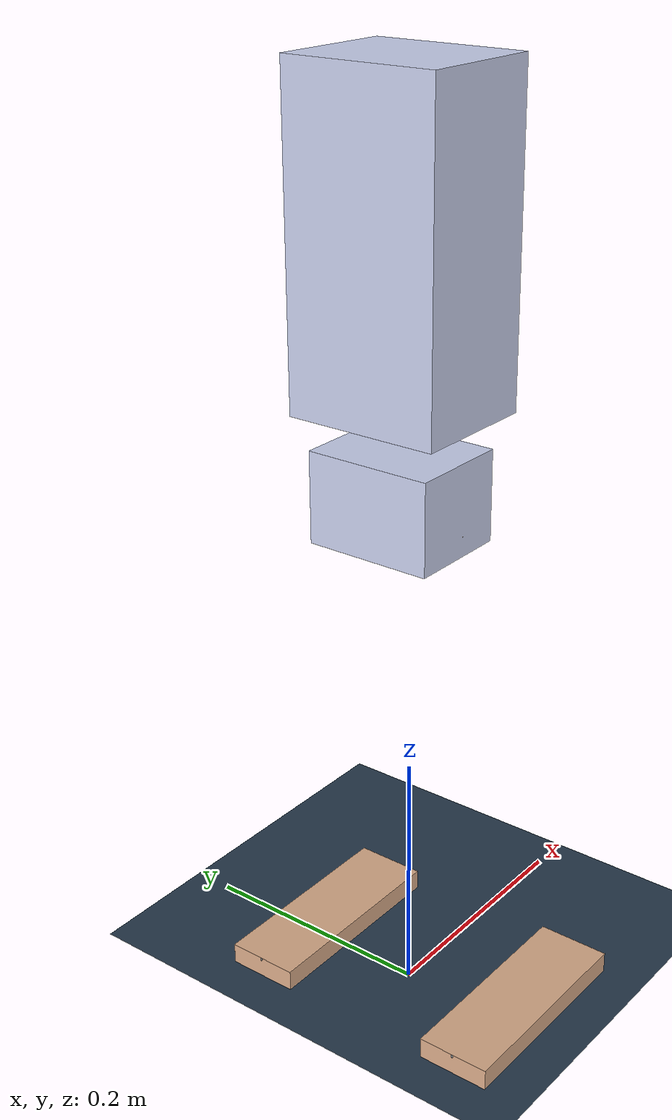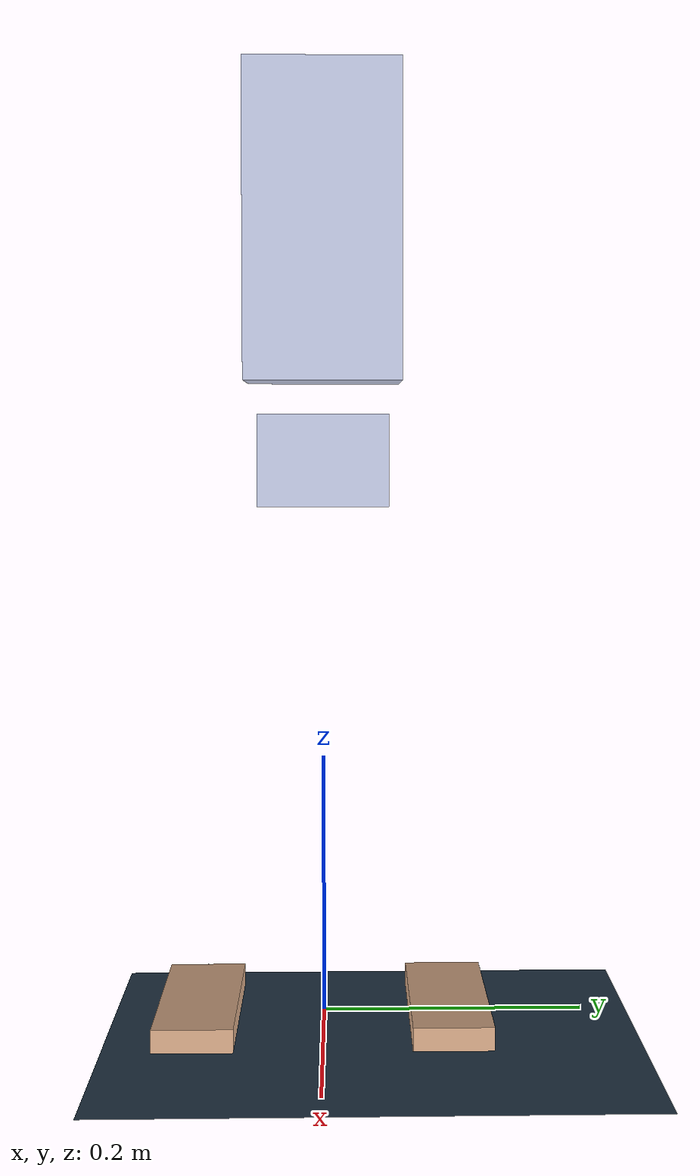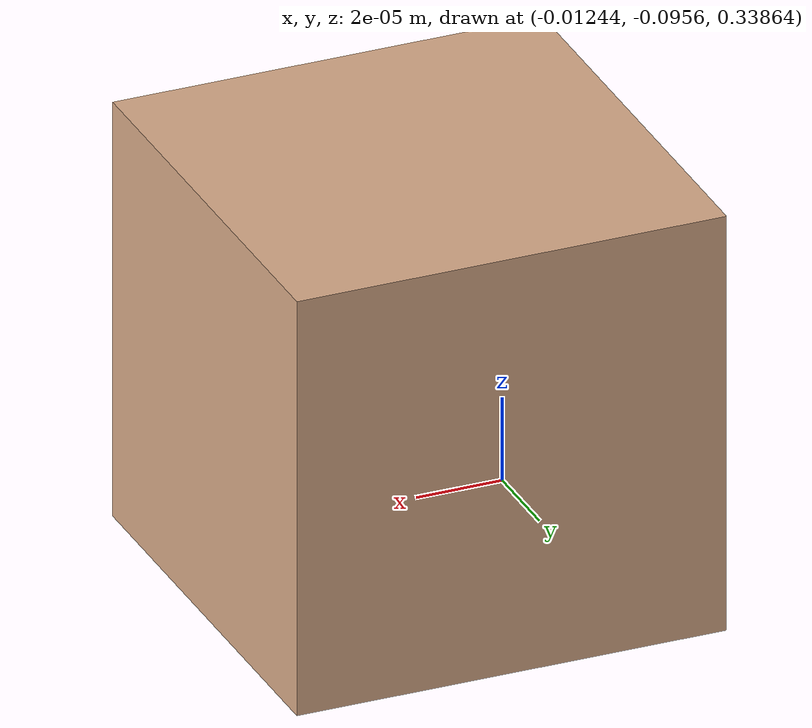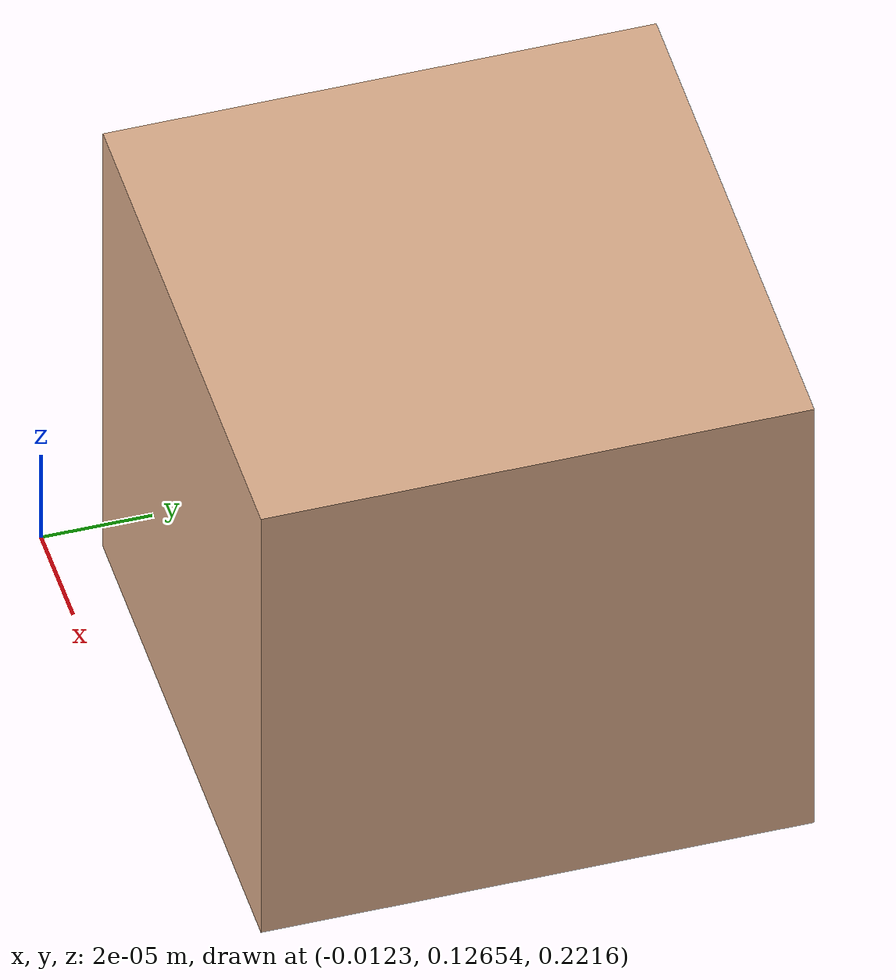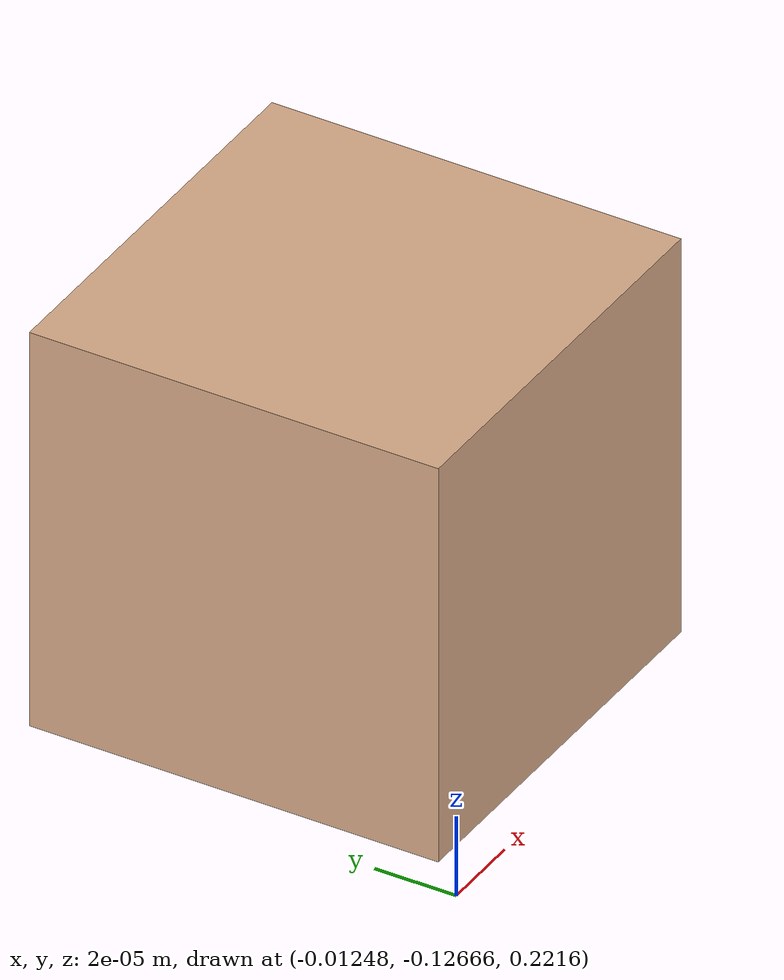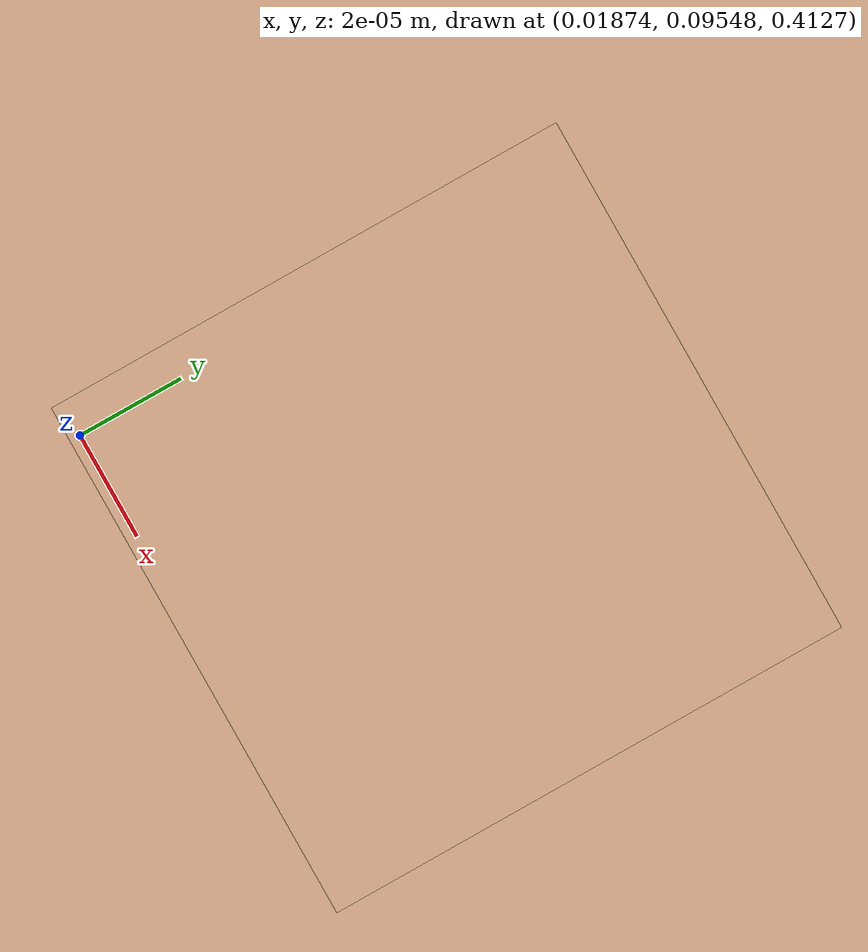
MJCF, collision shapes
<mujoco model="dm">
  <compiler angle="radian" eulerseq="zyx"/>
  <option timestep='0.001' iterations='50' solver='PGS' gravity='0 0 -9.81'>
	    <flag sensornoise="enable" frictionloss="enable"/>
	    </option>
	    <size njmax="500" nconmax="100" />

	    <visual>
		<quality shadowsize='4096'/>
		<map znear='0.05'/>
	    </visual>
	  <default>
      <joint limited='true'/>
      <motor ctrllimited='true'/>
      <geom  condim='4' contype="1" conaffinity="15" solref='0.001 2' friction='0.9 0.2 0.2'/>
      <equality solref='0.001 2'/>
      <default class='leg_joint_param'>
          <joint  damping="0.01" frictionloss="0.01" armature="0.01"/>
      </default>
	  </default>
  <asset>
    <mesh name="base_link" file="base_link.STL"/>
    <mesh name="loin_yaw_Link" file="loin_yaw_Link.STL"/>
    <mesh name="leg_l1_link" file="leg_l1_link.STL"/>
    <mesh name="leg_l2_link" file="leg_l2_link.STL"/>
    <mesh name="leg_l3_link" file="leg_l3_link.STL"/>
    <mesh name="leg_l4_link" file="leg_l4_link.STL"/>
    <mesh name="leg_l5_link" file="leg_l5_link.STL"/>
    <mesh name="leg_r1_link" file="leg_r1_link.STL"/>
    <mesh name="leg_r2_link" file="leg_r2_link.STL"/>
    <mesh name="leg_r3_link" file="leg_r3_link.STL"/>
    <mesh name="leg_r4_link" file="leg_r4_link.STL"/>
    <mesh name="leg_r5_link" file="leg_r5_link.STL"/>
    <material name="matplane" reflectance="0.3" texture="texplane" texrepeat="1 1" texuniform="true"/>
    <material name="matgeom" texture="texgeom" texuniform="true" rgba="0.8 0.6 .4 1"/>
    <texture name="texplane" type="2d" builtin="checker" rgb1=".2 .3 .4" rgb2=".1 0.15 0.2" width="512" height="512" mark="cross" markrgb=".8 .8 .8"/>
    <texture name="texgeom" type="cube" builtin="flat" mark="cross" width="127" height="1278" rgb1="0.8 0.6 0.4" rgb2="0.8 0.6 0.4" markrgb="1 1 1" random="0.01"/>
    <texture type="skybox" builtin="gradient" rgb1="1 1 1" rgb2=".6 .8 1" width="256" height="256"/>
  </asset>

  <worldbody>
    <light directional="true" diffuse=".4 .4 .4" specular="0.1 0.1 0.1" pos="0 0 5.0" dir="0 0 -1" castshadow="false"/>
    <light directional="true" diffuse=".6 .6 .6" specular="0.2 0.2 0.2" pos="0 0 4" dir="0 0 -1"/>
    <geom name="ground" type="plane" size="0 0 1" pos="0.001 0 0" quat="1 0 0 0" material="matplane" condim="1" conaffinity='15'/>
    <body name="base_link" pos="0 0 0.72" >
      <inertial pos="-0.0126752 -0.000507991 -0.169835" quat="0.999989 -0.00132624 0.00371712 -0.0023342" mass="4.89899" diaginertia="0.058573 0.0524694 0.016614"/>

      <joint name="floating_base_joint" type="free" limited="false" />
      <site name='imu' size='0.01' pos='0.0 0 0.0' quat='1 0 0 0'/>

      <geom type="mesh" contype="0" conaffinity="0" group="1" density="0" rgba="0.792157 0.819608 0.933333 1" mesh="base_link"/>
      <geom size="0.05 0.06 0.12" pos="-0.01 0 -0.11" type="box" rgba="0.792157 0.819608 0.933333 1"/>
      <geom pos="-0.012333 0 -0.24525" quat="1 0 0 0" type="mesh" contype="0" conaffinity="0" group="1" density="0" rgba="0.792157 0.819608 0.933333 1" mesh="loin_yaw_Link"/>
      <geom size="0.04 0.05 0.035" pos="-0.012333 0 -0.29025" type="box" rgba="0.792157 0.819608 0.933333 1"/>
      <body name="leg_l1_link" pos="-0.0122956 0.05355 -0.30725">
        <inertial pos="0.003165 0.041652 -6.4e-05" quat="0.401896 0.116854 -0.729348 0.541181" mass="0.492347" diaginertia="0.000304912 0.000303129 0.000298959"/>
        <joint name="left_leg_pitch_joint" pos="0 0 0" axis="0 1 0" limited="true" range="-1.05 1.05"/>
        <geom type="mesh" contype="0" conaffinity="0" group="1" density="0" rgba="0.854902 0.67451 0.541176 1" mesh="leg_l1_link"/>
        <geom size="5e-05 5e-05 5e-05" type="box" rgba="0.854902 0.67451 0.541176 1"/>
        <body name="leg_l2_link" pos="0.031079 0.041978 0">
          <inertial pos="-0.031797 2.2e-05 -0.037074" quat="0.476303 0.522624 0.522624 0.476303" mass="0.11551" diaginertia="0.000192 0.000149279 0.000116721"/>
          <joint name="left_leg_roll_joint" pos="0 0 0" axis="1 0 0" limited="true" range="-0.52 0.785" />
          <geom type="mesh" contype="0" conaffinity="0" group="1" density="0" rgba="0.854902 0.67451 0.541176 1" mesh="leg_l2_link"/>
          <geom size="5e-05 5e-05 5e-05" type="box" rgba="0.854902 0.67451 0.541176 1"/>
          <body name="leg_l3_link" pos="-0.03105 2.1677e-05 -0.07405">
            <inertial pos="-9.4e-05 0.001497 -0.07069" quat="0.998967 0.0187001 -0.00350487 0.0412607" mass="0.921105" diaginertia="0.00238417 0.00236745 0.000560383"/>
            <joint name="left_leg_yaw_joint" pos="0 0 0" axis="0 0 1" limited="true" range="-0.52 0.785" />
            <geom type="mesh" contype="0" conaffinity="0" group="1" density="0" rgba="0.854902 0.67451 0.541176 1" mesh="leg_l3_link"/>
            <geom size="5e-05 5e-05 5e-05" type="box" rgba="0.854902 0.67451 0.541176 1"/>
            <body name="left_knee_link" pos="2.1677e-05 0.03105 -0.11705">
              <inertial pos="-0.003284 -0.032312 -0.084258" quat="0.997729 0.00884962 0.0569133 0.0349301" mass="0.519684" diaginertia="0.00107093 0.00098367 0.000417397"/>
              <joint name="left_knee_joint" pos="0 0 0" axis="0 1 0" limited="true" range="-0.3 2.3562" />
              <geom type="mesh" contype="0" conaffinity="0" group="1" density="0" rgba="0.854902 0.67451 0.541176 1" mesh="leg_l4_link"/>
              <geom size="5e-05 5e-05 5e-05" type="box" rgba="0.854902 0.67451 0.541176 1"/>
              <body name="left_ankle_link" pos="-3.1151e-05 -0.02305 -0.2">
                <inertial pos="0.0151736 -0.00800896 -0.0127333" quat="-2.14443e-05 0.725077 -1.9333e-05 0.688668" mass="0.192725" diaginertia="0.000557303 0.000532007 6.3704e-05"/>
                <joint name="left_ankle_joint" pos="0 0 0" axis="0 1 0" limited="true" range="-1.047 0.3" />
                <geom type="mesh" contype="0" conaffinity="0" group="1" density="0" rgba="0.854902 0.67451 0.541176 1" mesh="leg_l5_link"/>
                <geom size="0.0875 0.03 0.01" pos="0.027 -0.008 -0.015" type="box" rgba="0.854902 0.67451 0.541176 1"/>
                <geom size="0.001" pos="0.113 -0.008 -0.006" contype="0" conaffinity="0" group="1" density="0"/>
                <geom size="0.001" pos="0.113 -0.008 -0.006"/>
                <geom size="0.001" pos="-0.061 -0.008 -0.006" contype="0" conaffinity="0" group="1" density="0"/>
                <geom size="0.001" pos="-0.061 -0.008 -0.006"/>
              </body>
            </body>
          </body>
        </body>
      </body>
      <body name="leg_r1_link" pos="-0.0123704 -0.05355 -0.30725">
        <inertial pos="0.003106 -0.041675 -7.2e-05" quat="0.116854 0.401896 -0.541181 0.729348" mass="0.4921" diaginertia="0.000304912 0.000303129 0.000298959"/>
        <joint name="right_leg_pitch_joint" pos="0 0 0" axis="0 1 0" limited="true" range="-1.05 1.05" />
        <geom type="mesh" contype="0" conaffinity="0" group="1" density="0" rgba="0.854902 0.67451 0.541176 1" mesh="leg_r1_link"/>
        <geom size="5e-05 5e-05 5e-05" type="box" rgba="0.854902 0.67451 0.541176 1"/>
        <body name="leg_r2_link" pos="0.031021 -0.042022 0">
          <inertial pos="-0.031797 2.2e-05 -0.037074" quat="0.476303 0.522624 0.522624 0.476303" mass="0.11551" diaginertia="0.000192 0.000149279 0.000116721"/>
          <joint name="right_leg_roll_joint" pos="0 0 0" axis="1 0 0" limited="true" range="-0.785 0.52" />
          <geom type="mesh" contype="0" conaffinity="0" group="1" density="0" rgba="0.854902 0.67451 0.541176 1" mesh="leg_r2_link"/>
          <geom size="5e-05 5e-05 5e-05" type="box" rgba="0.854902 0.67451 0.541176 1"/>
          <body name="leg_r3_link" pos="-0.03105 2.1677e-05 -0.07405">
            <inertial pos="0.000186 -0.001497 -0.070691" quat="0.999546 -0.0188654 0.00121243 -0.0234514" mass="0.921105" diaginertia="0.00238406 0.00236753 0.000560418"/>
            <joint name="right_leg_yaw_joint" pos="0 0 0" axis="0 0 1" limited="true" range="-0.785 0.52" />
            <geom type="mesh" contype="0" conaffinity="0" group="1" density="0" rgba="0.854902 0.67451 0.541176 1" mesh="leg_r3_link"/>
            <geom size="5e-05 5e-05 5e-05" type="box" rgba="0.854902 0.67451 0.541176 1"/>
            <body name="right_knee_link" pos="-2.1677e-05 -0.03105 -0.11705">
              <inertial pos="-0.00318 0.032366 -0.084259" quat="0.997516 -0.00927026 0.05687 -0.0405283" mass="0.519684" diaginertia="0.00107108 0.000983522 0.000417394"/>
              <joint name="right_knee_joint" pos="0 0 0" axis="0 1 0" limited="true" range="-0.3 2.3562" />
              <geom type="mesh" contype="0" conaffinity="0" group="1" density="0" rgba="0.854902 0.67451 0.541176 1" mesh="leg_r4_link"/>
              <geom size="5e-05 5e-05 5e-05" type="box" rgba="0.854902 0.67451 0.541176 1"/>
              <body name="right_ankle_link" pos="1.6127e-05 0.0231 -0.2">
                <inertial pos="0.0151853 0.00799104 -0.0127324" quat="-2.14381e-05 0.725078 -1.93302e-05 0.688666" mass="0.192725" diaginertia="0.000557298 0.000532002 6.37035e-05"/>
                <joint name="right_ankle_joint" pos="0 0 0" axis="0 1 0" limited="true" range="-1.047 0.3" />
                <geom type="mesh" contype="0" conaffinity="0" group="1" density="0" rgba="0.854902 0.67451 0.541176 1" mesh="leg_r5_link"/>
                <geom size="0.0875 0.03 0.01" pos="0.027 0.008 -0.015" type="box" rgba="0.854902 0.67451 0.541176 1"/>
                <geom size="0.001" pos="0.113 0.008 -0.006" contype="0" conaffinity="0" group="1" density="0"/>
                <geom size="0.001" pos="0.113 0.008 -0.006"/>
                <geom size="0.001" pos="-0.061 0.008 -0.006" contype="0" conaffinity="0" group="1" density="0"/>
                <geom size="0.001" pos="-0.061 0.008 -0.006"/>
              </body>
            </body>
          </body>
        </body>
      </body>
    </body>
  </worldbody>

  <actuator>
    <motor name="left_leg_pitch_joint" joint="left_leg_pitch_joint" gear="1" ctrllimited="true" ctrlrange="-178 178"/>
    <motor name="left_leg_roll_joint" joint="left_leg_roll_joint" gear="1" ctrllimited="true" ctrlrange="-178 178"/>
    <motor name="left_leg_yaw_joint" joint="left_leg_yaw_joint" gear="1" ctrllimited="true" ctrlrange="-178 178"/>
    <motor name="left_knee_joint" joint="left_knee_joint" gear="1" ctrllimited="true" ctrlrange="-178 178"/>
    <motor name="left_ankle_joint" joint="left_ankle_joint" gear="1" ctrllimited="true" ctrlrange="-178 178"/>

    <motor name="right_leg_pitch_joint" joint="right_leg_pitch_joint" gear="1" ctrllimited="true" ctrlrange="-178 178"/>
    <motor name="right_leg_roll_joint" joint="right_leg_roll_joint" gear="1" ctrllimited="true" ctrlrange="-178 178"/>
    <motor name="right_leg_yaw_joint" joint="right_leg_yaw_joint" gear="1" ctrllimited="true" ctrlrange="-178 178"/>
    <motor name="right_knee_joint" joint="right_knee_joint" gear="1" ctrllimited="true" ctrlrange="-178 178"/>
    <motor name="right_ankle_joint" joint="right_ankle_joint" gear="1" ctrllimited="true" ctrlrange="-178 178"/>

  </actuator>

  <sensor>

    <framequat     name='orientation' objtype='site' noise='0.001' objname='imu'/>
    <framepos     name='position' objtype='site' noise='0.001' objname='imu'/>
    <gyro          name='angular-velocity'    site='imu' noise='0.005' cutoff='34.9'/>
    <velocimeter   name='linear-velocity'     site='imu' noise='0.001' cutoff='30'/>
    <accelerometer name='linear-acceleration' site='imu' noise='0.005' cutoff='157'/>
    <magnetometer  name='magnetometer'        site='imu'/>

  </sensor>

</mujoco>
